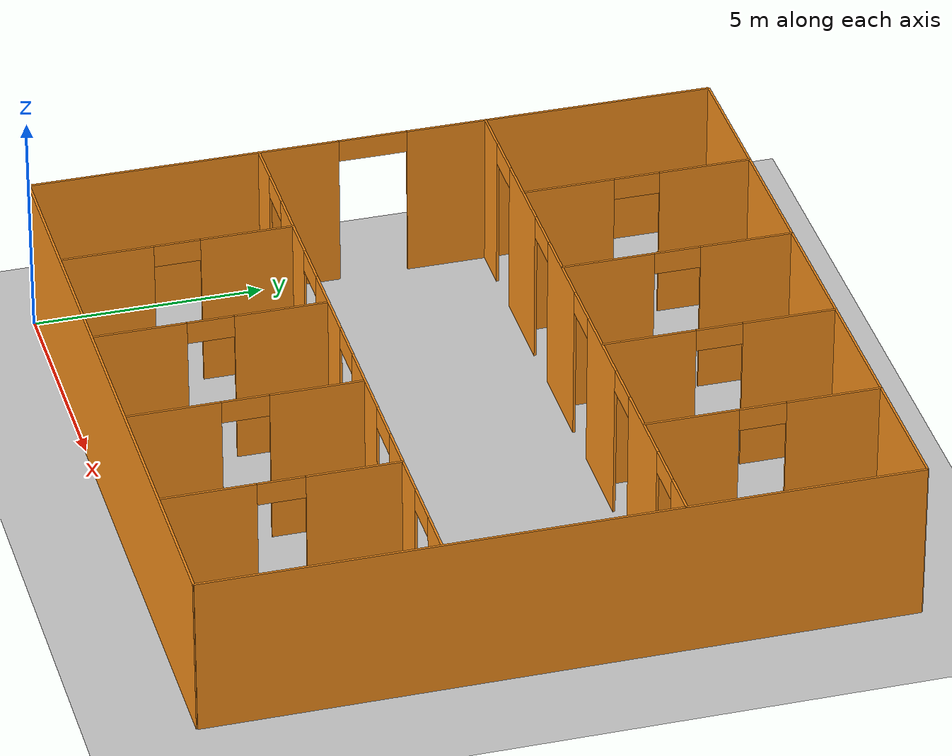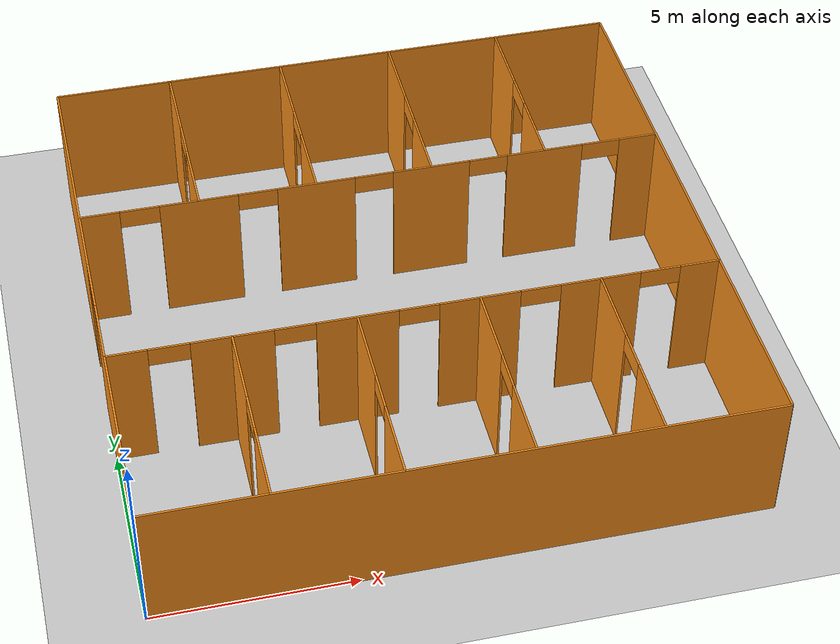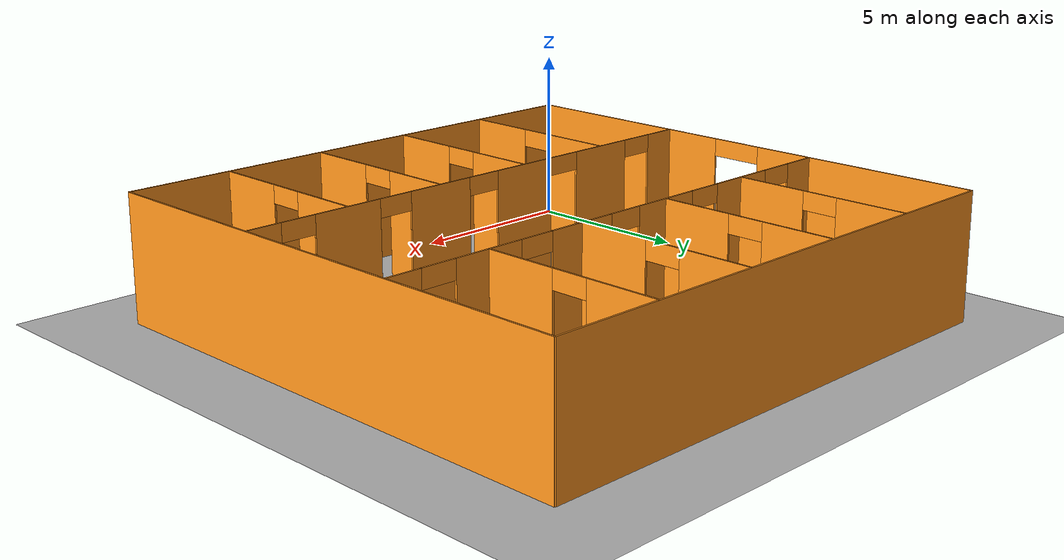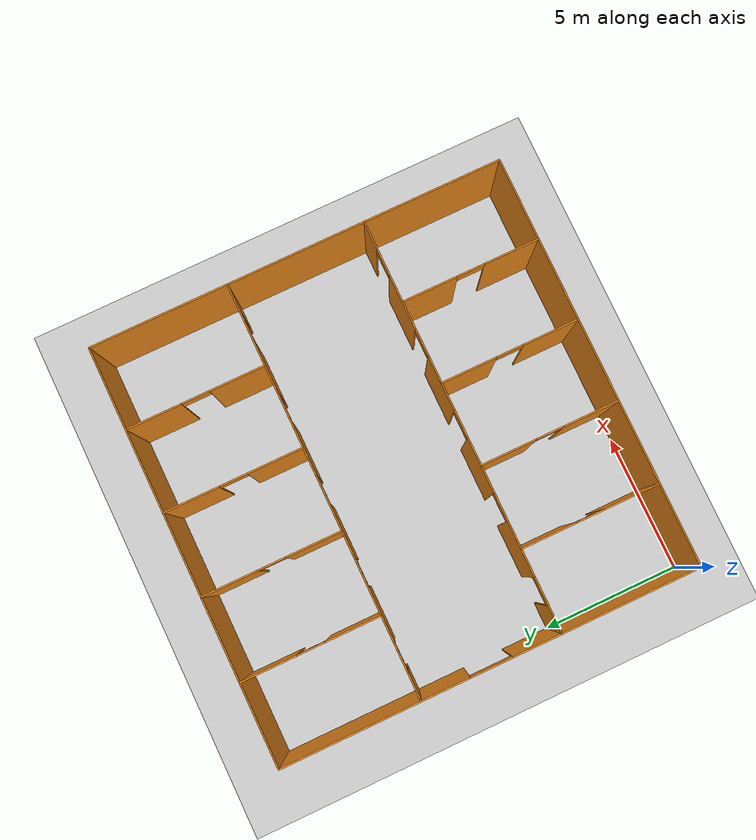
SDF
<sdf version="1.6">
 <world name="default">
  <model name="box_52">
   <pose>12.0 2.5 3.25 0 0 1.5707963267948966</pose>
   <link name="link">
    <inertial>
     <mass>1</mass>
     <inertia><ixx>0</ixx><ixy>0</ixy><ixz>0</ixz><iyy>0</iyy><iyz>0</iyz><izz>0</izz></inertia>
    </inertial>
    <collision name="collision"><geometry><box><size>1.0 0.05 0.5</size></box></geometry></collision>
    <visual name="visual">
     <geometry><box><size>1.0 0.05 0.5</size></box></geometry>
     <material>
      <script><name>Gazebo/Orange</name><uri>file://media/materials/scripts/gazebo.material</uri></script>
     </material>
    </visual>
   </link>
   <static>1</static>
  </model>
  <model name="box_51">
   <pose>9.0 2.5 3.25 0 0 1.5707963267948966</pose>
   <link name="link">
    <inertial>
     <mass>1</mass>
     <inertia><ixx>0</ixx><ixy>0</ixy><ixz>0</ixz><iyy>0</iyy><iyz>0</iyz><izz>0</izz></inertia>
    </inertial>
    <collision name="collision"><geometry><box><size>1.0 0.05 0.5</size></box></geometry></collision>
    <visual name="visual">
     <geometry><box><size>1.0 0.05 0.5</size></box></geometry>
     <material>
      <script><name>Gazebo/Orange</name><uri>file://media/materials/scripts/gazebo.material</uri></script>
     </material>
    </visual>
   </link>
   <static>1</static>
  </model>
  <model name="box_50">
   <pose>6.0 2.5 3.25 0 0 1.5707963267948966</pose>
   <link name="link">
    <inertial>
     <mass>1</mass>
     <inertia><ixx>0</ixx><ixy>0</ixy><ixz>0</ixz><iyy>0</iyy><iyz>0</iyz><izz>0</izz></inertia>
    </inertial>
    <collision name="collision"><geometry><box><size>1.0 0.05 0.5</size></box></geometry></collision>
    <visual name="visual">
     <geometry><box><size>1.0 0.05 0.5</size></box></geometry>
     <material>
      <script><name>Gazebo/Orange</name><uri>file://media/materials/scripts/gazebo.material</uri></script>
     </material>
    </visual>
   </link>
   <static>1</static>
  </model>
  <model name="box_49">
   <pose>3.0 2.5 3.25 0 0 1.5707963267948966</pose>
   <link name="link">
    <inertial>
     <mass>1</mass>
     <inertia><ixx>0</ixx><ixy>0</ixy><ixz>0</ixz><iyy>0</iyy><iyz>0</iyz><izz>0</izz></inertia>
    </inertial>
    <collision name="collision"><geometry><box><size>1.0 0.05 0.5</size></box></geometry></collision>
    <visual name="visual">
     <geometry><box><size>1.0 0.05 0.5</size></box></geometry>
     <material>
      <script><name>Gazebo/Orange</name><uri>file://media/materials/scripts/gazebo.material</uri></script>
     </material>
    </visual>
   </link>
   <static>1</static>
  </model>
  <model name="box_48">
   <pose>3.0 12.5 3.25 0 0 1.5707963267948966</pose>
   <link name="link">
    <inertial>
     <mass>1</mass>
     <inertia><ixx>0</ixx><ixy>0</ixy><ixz>0</ixz><iyy>0</iyy><iyz>0</iyz><izz>0</izz></inertia>
    </inertial>
    <collision name="collision"><geometry><box><size>1.0 0.05 0.5</size></box></geometry></collision>
    <visual name="visual">
     <geometry><box><size>1.0 0.05 0.5</size></box></geometry>
     <material>
      <script><name>Gazebo/Orange</name><uri>file://media/materials/scripts/gazebo.material</uri></script>
     </material>
    </visual>
   </link>
   <static>1</static>
  </model>
  <model name="box_47">
   <pose>6.0 12.5 3.25 0 0 1.5707963267948966</pose>
   <link name="link">
    <inertial>
     <mass>1</mass>
     <inertia><ixx>0</ixx><ixy>0</ixy><ixz>0</ixz><iyy>0</iyy><iyz>0</iyz><izz>0</izz></inertia>
    </inertial>
    <collision name="collision"><geometry><box><size>1.0 0.05 0.5</size></box></geometry></collision>
    <visual name="visual">
     <geometry><box><size>1.0 0.05 0.5</size></box></geometry>
     <material>
      <script><name>Gazebo/Orange</name><uri>file://media/materials/scripts/gazebo.material</uri></script>
     </material>
    </visual>
   </link>
   <static>1</static>
  </model>
  <model name="box_46">
   <pose>12.0 12.5 3.25 0 0 1.5707963267948966</pose>
   <link name="link">
    <inertial>
     <mass>1</mass>
     <inertia><ixx>0</ixx><ixy>0</ixy><ixz>0</ixz><iyy>0</iyy><iyz>0</iyz><izz>0</izz></inertia>
    </inertial>
    <collision name="collision"><geometry><box><size>1.0 0.05 0.5</size></box></geometry></collision>
    <visual name="visual">
     <geometry><box><size>1.0 0.05 0.5</size></box></geometry>
     <material>
      <script><name>Gazebo/Orange</name><uri>file://media/materials/scripts/gazebo.material</uri></script>
     </material>
    </visual>
   </link>
   <static>1</static>
  </model>
  <model name="box_45">
   <pose>9.0 12.5 3.25 0 0 1.5707963267948966</pose>
   <link name="link">
    <inertial>
     <mass>1</mass>
     <inertia><ixx>0</ixx><ixy>0</ixy><ixz>0</ixz><iyy>0</iyy><iyz>0</iyz><izz>0</izz></inertia>
    </inertial>
    <collision name="collision"><geometry><box><size>1.0 0.05 0.5</size></box></geometry></collision>
    <visual name="visual">
     <geometry><box><size>1.0 0.05 0.5</size></box></geometry>
     <material>
      <script><name>Gazebo/Orange</name><uri>file://media/materials/scripts/gazebo.material</uri></script>
     </material>
    </visual>
   </link>
   <static>1</static>
  </model>
  <model name="box_44">
   <pose>1.5 5.0 3.25 0 0 -3.141592653589793</pose>
   <link name="link">
    <inertial>
     <mass>1</mass>
     <inertia><ixx>0</ixx><ixy>0</ixy><ixz>0</ixz><iyy>0</iyy><iyz>0</iyz><izz>0</izz></inertia>
    </inertial>
    <collision name="collision"><geometry><box><size>1.0 0.05 0.5</size></box></geometry></collision>
    <visual name="visual">
     <geometry><box><size>1.0 0.05 0.5</size></box></geometry>
     <material>
      <script><name>Gazebo/Orange</name><uri>file://media/materials/scripts/gazebo.material</uri></script>
     </material>
    </visual>
   </link>
   <static>1</static>
  </model>
  <model name="box_43">
   <pose>4.5 5.0 3.25 0 0 -3.141592653589793</pose>
   <link name="link">
    <inertial>
     <mass>1</mass>
     <inertia><ixx>0</ixx><ixy>0</ixy><ixz>0</ixz><iyy>0</iyy><iyz>0</iyz><izz>0</izz></inertia>
    </inertial>
    <collision name="collision"><geometry><box><size>1.0 0.05 0.5</size></box></geometry></collision>
    <visual name="visual">
     <geometry><box><size>1.0 0.05 0.5</size></box></geometry>
     <material>
      <script><name>Gazebo/Orange</name><uri>file://media/materials/scripts/gazebo.material</uri></script>
     </material>
    </visual>
   </link>
   <static>1</static>
  </model>
  <model name="box_42">
   <pose>7.5 5.0 3.25 0 0 -3.141592653589793</pose>
   <link name="link">
    <inertial>
     <mass>1</mass>
     <inertia><ixx>0</ixx><ixy>0</ixy><ixz>0</ixz><iyy>0</iyy><iyz>0</iyz><izz>0</izz></inertia>
    </inertial>
    <collision name="collision"><geometry><box><size>1.0 0.05 0.5</size></box></geometry></collision>
    <visual name="visual">
     <geometry><box><size>1.0 0.05 0.5</size></box></geometry>
     <material>
      <script><name>Gazebo/Orange</name><uri>file://media/materials/scripts/gazebo.material</uri></script>
     </material>
    </visual>
   </link>
   <static>1</static>
  </model>
  <model name="box_41">
   <pose>10.5 5.0 3.25 0 0 -3.141592653589793</pose>
   <link name="link">
    <inertial>
     <mass>1</mass>
     <inertia><ixx>0</ixx><ixy>0</ixy><ixz>0</ixz><iyy>0</iyy><iyz>0</iyz><izz>0</izz></inertia>
    </inertial>
    <collision name="collision"><geometry><box><size>1.0 0.05 0.5</size></box></geometry></collision>
    <visual name="visual">
     <geometry><box><size>1.0 0.05 0.5</size></box></geometry>
     <material>
      <script><name>Gazebo/Orange</name><uri>file://media/materials/scripts/gazebo.material</uri></script>
     </material>
    </visual>
   </link>
   <static>1</static>
  </model>
  <model name="box_40">
   <pose>13.5 5.0 3.25 0 0 -3.141592653589793</pose>
   <link name="link">
    <inertial>
     <mass>1</mass>
     <inertia><ixx>0</ixx><ixy>0</ixy><ixz>0</ixz><iyy>0</iyy><iyz>0</iyz><izz>0</izz></inertia>
    </inertial>
    <collision name="collision"><geometry><box><size>1.0 0.05 0.5</size></box></geometry></collision>
    <visual name="visual">
     <geometry><box><size>1.0 0.05 0.5</size></box></geometry>
     <material>
      <script><name>Gazebo/Orange</name><uri>file://media/materials/scripts/gazebo.material</uri></script>
     </material>
    </visual>
   </link>
   <static>1</static>
  </model>
  <model name="box_39">
   <pose>13.5 10.0 3.25 0 0 -3.141592653589793</pose>
   <link name="link">
    <inertial>
     <mass>1</mass>
     <inertia><ixx>0</ixx><ixy>0</ixy><ixz>0</ixz><iyy>0</iyy><iyz>0</iyz><izz>0</izz></inertia>
    </inertial>
    <collision name="collision"><geometry><box><size>1.0 0.05 0.5</size></box></geometry></collision>
    <visual name="visual">
     <geometry><box><size>1.0 0.05 0.5</size></box></geometry>
     <material>
      <script><name>Gazebo/Orange</name><uri>file://media/materials/scripts/gazebo.material</uri></script>
     </material>
    </visual>
   </link>
   <static>1</static>
  </model>
  <model name="box_38">
   <pose>10.5 10.0 3.25 0 0 -3.141592653589793</pose>
   <link name="link">
    <inertial>
     <mass>1</mass>
     <inertia><ixx>0</ixx><ixy>0</ixy><ixz>0</ixz><iyy>0</iyy><iyz>0</iyz><izz>0</izz></inertia>
    </inertial>
    <collision name="collision"><geometry><box><size>1.0 0.05 0.5</size></box></geometry></collision>
    <visual name="visual">
     <geometry><box><size>1.0 0.05 0.5</size></box></geometry>
     <material>
      <script><name>Gazebo/Orange</name><uri>file://media/materials/scripts/gazebo.material</uri></script>
     </material>
    </visual>
   </link>
   <static>1</static>
  </model>
  <model name="box_37">
   <pose>7.5 10.0 3.25 0 0 -3.141592653589793</pose>
   <link name="link">
    <inertial>
     <mass>1</mass>
     <inertia><ixx>0</ixx><ixy>0</ixy><ixz>0</ixz><iyy>0</iyy><iyz>0</iyz><izz>0</izz></inertia>
    </inertial>
    <collision name="collision"><geometry><box><size>1.0 0.05 0.5</size></box></geometry></collision>
    <visual name="visual">
     <geometry><box><size>1.0 0.05 0.5</size></box></geometry>
     <material>
      <script><name>Gazebo/Orange</name><uri>file://media/materials/scripts/gazebo.material</uri></script>
     </material>
    </visual>
   </link>
   <static>1</static>
  </model>
  <model name="box_36">
   <pose>4.5 10.0 3.25 0 0 -3.141592653589793</pose>
   <link name="link">
    <inertial>
     <mass>1</mass>
     <inertia><ixx>0</ixx><ixy>0</ixy><ixz>0</ixz><iyy>0</iyy><iyz>0</iyz><izz>0</izz></inertia>
    </inertial>
    <collision name="collision"><geometry><box><size>1.0 0.05 0.5</size></box></geometry></collision>
    <visual name="visual">
     <geometry><box><size>1.0 0.05 0.5</size></box></geometry>
     <material>
      <script><name>Gazebo/Orange</name><uri>file://media/materials/scripts/gazebo.material</uri></script>
     </material>
    </visual>
   </link>
   <static>1</static>
  </model>
  <model name="box_35">
   <pose>1.5 10.0 3.25 0 0 -3.141592653589793</pose>
   <link name="link">
    <inertial>
     <mass>1</mass>
     <inertia><ixx>0</ixx><ixy>0</ixy><ixz>0</ixz><iyy>0</iyy><iyz>0</iyz><izz>0</izz></inertia>
    </inertial>
    <collision name="collision"><geometry><box><size>1.0 0.05 0.5</size></box></geometry></collision>
    <visual name="visual">
     <geometry><box><size>1.0 0.05 0.5</size></box></geometry>
     <material>
      <script><name>Gazebo/Orange</name><uri>file://media/materials/scripts/gazebo.material</uri></script>
     </material>
    </visual>
   </link>
   <static>1</static>
  </model>
  <model name="box_34">
   <pose>0.0 7.5 3.25 0 0 1.5707963267948966</pose>
   <link name="link">
    <inertial>
     <mass>1</mass>
     <inertia><ixx>0</ixx><ixy>0</ixy><ixz>0</ixz><iyy>0</iyy><iyz>0</iyz><izz>0</izz></inertia>
    </inertial>
    <collision name="collision"><geometry><box><size>1.5 0.05 0.5</size></box></geometry></collision>
    <visual name="visual">
     <geometry><box><size>1.5 0.05 0.5</size></box></geometry>
     <material>
      <script><name>Gazebo/Orange</name><uri>file://media/materials/scripts/gazebo.material</uri></script>
     </material>
    </visual>
   </link>
   <static>1</static>
  </model>
  <model name="box_33">
   <pose>3.0 1.0 1.75 0 0 1.5707963267948966</pose>
   <link name="link">
    <inertial>
     <mass>1</mass>
     <inertia><ixx>0</ixx><ixy>0</ixy><ixz>0</ixz><iyy>0</iyy><iyz>0</iyz><izz>0</izz></inertia>
    </inertial>
    <collision name="collision"><geometry><box><size>2.0 0.05 3.5</size></box></geometry></collision>
    <visual name="visual">
     <geometry><box><size>2.0 0.05 3.5</size></box></geometry>
     <material>
      <script><name>Gazebo/Orange</name><uri>file://media/materials/scripts/gazebo.material</uri></script>
     </material>
    </visual>
   </link>
   <static>1</static>
  </model>
  <model name="box_32">
   <pose>3.0 4.0 1.75 0 0 -1.5707963267948966</pose>
   <link name="link">
    <inertial>
     <mass>1</mass>
     <inertia><ixx>0</ixx><ixy>0</ixy><ixz>0</ixz><iyy>0</iyy><iyz>0</iyz><izz>0</izz></inertia>
    </inertial>
    <collision name="collision"><geometry><box><size>2.0 0.05 3.5</size></box></geometry></collision>
    <visual name="visual">
     <geometry><box><size>2.0 0.05 3.5</size></box></geometry>
     <material>
      <script><name>Gazebo/Orange</name><uri>file://media/materials/scripts/gazebo.material</uri></script>
     </material>
    </visual>
   </link>
   <static>1</static>
  </model>
  <model name="box_31">
   <pose>6.0 4.0 1.75 0 0 -1.5707963267948966</pose>
   <link name="link">
    <inertial>
     <mass>1</mass>
     <inertia><ixx>0</ixx><ixy>0</ixy><ixz>0</ixz><iyy>0</iyy><iyz>0</iyz><izz>0</izz></inertia>
    </inertial>
    <collision name="collision"><geometry><box><size>2.0 0.05 3.5</size></box></geometry></collision>
    <visual name="visual">
     <geometry><box><size>2.0 0.05 3.5</size></box></geometry>
     <material>
      <script><name>Gazebo/Orange</name><uri>file://media/materials/scripts/gazebo.material</uri></script>
     </material>
    </visual>
   </link>
   <static>1</static>
  </model>
  <model name="box_30">
   <pose>6.0 1.0 1.75 0 0 1.5707963267948966</pose>
   <link name="link">
    <inertial>
     <mass>1</mass>
     <inertia><ixx>0</ixx><ixy>0</ixy><ixz>0</ixz><iyy>0</iyy><iyz>0</iyz><izz>0</izz></inertia>
    </inertial>
    <collision name="collision"><geometry><box><size>2.0 0.05 3.5</size></box></geometry></collision>
    <visual name="visual">
     <geometry><box><size>2.0 0.05 3.5</size></box></geometry>
     <material>
      <script><name>Gazebo/Orange</name><uri>file://media/materials/scripts/gazebo.material</uri></script>
     </material>
    </visual>
   </link>
   <static>1</static>
  </model>
  <model name="box_29">
   <pose>9.0 1.0 1.75 0 0 1.5707963267948966</pose>
   <link name="link">
    <inertial>
     <mass>1</mass>
     <inertia><ixx>0</ixx><ixy>0</ixy><ixz>0</ixz><iyy>0</iyy><iyz>0</iyz><izz>0</izz></inertia>
    </inertial>
    <collision name="collision"><geometry><box><size>2.0 0.05 3.5</size></box></geometry></collision>
    <visual name="visual">
     <geometry><box><size>2.0 0.05 3.5</size></box></geometry>
     <material>
      <script><name>Gazebo/Orange</name><uri>file://media/materials/scripts/gazebo.material</uri></script>
     </material>
    </visual>
   </link>
   <static>1</static>
  </model>
  <model name="box_28">
   <pose>9.0 4.0 1.75 0 0 -1.5707963267948966</pose>
   <link name="link">
    <inertial>
     <mass>1</mass>
     <inertia><ixx>0</ixx><ixy>0</ixy><ixz>0</ixz><iyy>0</iyy><iyz>0</iyz><izz>0</izz></inertia>
    </inertial>
    <collision name="collision"><geometry><box><size>2.0 0.05 3.5</size></box></geometry></collision>
    <visual name="visual">
     <geometry><box><size>2.0 0.05 3.5</size></box></geometry>
     <material>
      <script><name>Gazebo/Orange</name><uri>file://media/materials/scripts/gazebo.material</uri></script>
     </material>
    </visual>
   </link>
   <static>1</static>
  </model>
  <model name="box_27">
   <pose>12.0 1.0 1.75 0 0 1.5707963267948966</pose>
   <link name="link">
    <inertial>
     <mass>1</mass>
     <inertia><ixx>0</ixx><ixy>0</ixy><ixz>0</ixz><iyy>0</iyy><iyz>0</iyz><izz>0</izz></inertia>
    </inertial>
    <collision name="collision"><geometry><box><size>2.0 0.05 3.5</size></box></geometry></collision>
    <visual name="visual">
     <geometry><box><size>2.0 0.05 3.5</size></box></geometry>
     <material>
      <script><name>Gazebo/Orange</name><uri>file://media/materials/scripts/gazebo.material</uri></script>
     </material>
    </visual>
   </link>
   <static>1</static>
  </model>
  <model name="box_26">
   <pose>12.0 4.0 1.75 0 0 -1.5707963267948966</pose>
   <link name="link">
    <inertial>
     <mass>1</mass>
     <inertia><ixx>0</ixx><ixy>0</ixy><ixz>0</ixz><iyy>0</iyy><iyz>0</iyz><izz>0</izz></inertia>
    </inertial>
    <collision name="collision"><geometry><box><size>2.0 0.05 3.5</size></box></geometry></collision>
    <visual name="visual">
     <geometry><box><size>2.0 0.05 3.5</size></box></geometry>
     <material>
      <script><name>Gazebo/Orange</name><uri>file://media/materials/scripts/gazebo.material</uri></script>
     </material>
    </visual>
   </link>
   <static>1</static>
  </model>
  <model name="box_25">
   <pose>12.0 14.0 1.75 0 0 -1.5707963267948966</pose>
   <link name="link">
    <inertial>
     <mass>1</mass>
     <inertia><ixx>0</ixx><ixy>0</ixy><ixz>0</ixz><iyy>0</iyy><iyz>0</iyz><izz>0</izz></inertia>
    </inertial>
    <collision name="collision"><geometry><box><size>2.0 0.05 3.5</size></box></geometry></collision>
    <visual name="visual">
     <geometry><box><size>2.0 0.05 3.5</size></box></geometry>
     <material>
      <script><name>Gazebo/Orange</name><uri>file://media/materials/scripts/gazebo.material</uri></script>
     </material>
    </visual>
   </link>
   <static>1</static>
  </model>
  <model name="box_24">
   <pose>12.0 11.0 1.75 0 0 1.5707963267948966</pose>
   <link name="link">
    <inertial>
     <mass>1</mass>
     <inertia><ixx>0</ixx><ixy>0</ixy><ixz>0</ixz><iyy>0</iyy><iyz>0</iyz><izz>0</izz></inertia>
    </inertial>
    <collision name="collision"><geometry><box><size>2.0 0.05 3.5</size></box></geometry></collision>
    <visual name="visual">
     <geometry><box><size>2.0 0.05 3.5</size></box></geometry>
     <material>
      <script><name>Gazebo/Orange</name><uri>file://media/materials/scripts/gazebo.material</uri></script>
     </material>
    </visual>
   </link>
   <static>1</static>
  </model>
  <model name="box_23">
   <pose>9.0 11.0 1.75 0 0 1.5707963267948966</pose>
   <link name="link">
    <inertial>
     <mass>1</mass>
     <inertia><ixx>0</ixx><ixy>0</ixy><ixz>0</ixz><iyy>0</iyy><iyz>0</iyz><izz>0</izz></inertia>
    </inertial>
    <collision name="collision"><geometry><box><size>2.0 0.05 3.5</size></box></geometry></collision>
    <visual name="visual">
     <geometry><box><size>2.0 0.05 3.5</size></box></geometry>
     <material>
      <script><name>Gazebo/Orange</name><uri>file://media/materials/scripts/gazebo.material</uri></script>
     </material>
    </visual>
   </link>
   <static>1</static>
  </model>
  <model name="box_22">
   <pose>9.0 14.0 1.75 0 0 1.5707963267948966</pose>
   <link name="link">
    <inertial>
     <mass>1</mass>
     <inertia><ixx>0</ixx><ixy>0</ixy><ixz>0</ixz><iyy>0</iyy><iyz>0</iyz><izz>0</izz></inertia>
    </inertial>
    <collision name="collision"><geometry><box><size>2.0 0.05 3.5</size></box></geometry></collision>
    <visual name="visual">
     <geometry><box><size>2.0 0.05 3.5</size></box></geometry>
     <material>
      <script><name>Gazebo/Orange</name><uri>file://media/materials/scripts/gazebo.material</uri></script>
     </material>
    </visual>
   </link>
   <static>1</static>
  </model>
  <model name="box_21">
   <pose>6.0 14.0 1.75 0 0 -1.5707963267948966</pose>
   <link name="link">
    <inertial>
     <mass>1</mass>
     <inertia><ixx>0</ixx><ixy>0</ixy><ixz>0</ixz><iyy>0</iyy><iyz>0</iyz><izz>0</izz></inertia>
    </inertial>
    <collision name="collision"><geometry><box><size>2.0 0.05 3.5</size></box></geometry></collision>
    <visual name="visual">
     <geometry><box><size>2.0 0.05 3.5</size></box></geometry>
     <material>
      <script><name>Gazebo/Orange</name><uri>file://media/materials/scripts/gazebo.material</uri></script>
     </material>
    </visual>
   </link>
   <static>1</static>
  </model>
  <model name="box_20">
   <pose>6.0 11.0 1.75 0 0 1.5707963267948966</pose>
   <link name="link">
    <inertial>
     <mass>1</mass>
     <inertia><ixx>0</ixx><ixy>0</ixy><ixz>0</ixz><iyy>0</iyy><iyz>0</iyz><izz>0</izz></inertia>
    </inertial>
    <collision name="collision"><geometry><box><size>2.0 0.05 3.5</size></box></geometry></collision>
    <visual name="visual">
     <geometry><box><size>2.0 0.05 3.5</size></box></geometry>
     <material>
      <script><name>Gazebo/Orange</name><uri>file://media/materials/scripts/gazebo.material</uri></script>
     </material>
    </visual>
   </link>
   <static>1</static>
  </model>
  <model name="box_19">
   <pose>3.0 14.0 1.75 0 0 -1.5707963267948966</pose>
   <link name="link">
    <inertial>
     <mass>1</mass>
     <inertia><ixx>0</ixx><ixy>0</ixy><ixz>0</ixz><iyy>0</iyy><iyz>0</iyz><izz>0</izz></inertia>
    </inertial>
    <collision name="collision"><geometry><box><size>2.0 0.05 3.5</size></box></geometry></collision>
    <visual name="visual">
     <geometry><box><size>2.0 0.05 3.5</size></box></geometry>
     <material>
      <script><name>Gazebo/Orange</name><uri>file://media/materials/scripts/gazebo.material</uri></script>
     </material>
    </visual>
   </link>
   <static>1</static>
  </model>
  <model name="box_18">
   <pose>3.0 11.0 1.75 0 0 1.5707963267948966</pose>
   <link name="link">
    <inertial>
     <mass>1</mass>
     <inertia><ixx>0</ixx><ixy>0</ixy><ixz>0</ixz><iyy>0</iyy><iyz>0</iyz><izz>0</izz></inertia>
    </inertial>
    <collision name="collision"><geometry><box><size>2.0 0.05 3.5</size></box></geometry></collision>
    <visual name="visual">
     <geometry><box><size>2.0 0.05 3.5</size></box></geometry>
     <material>
      <script><name>Gazebo/Orange</name><uri>file://media/materials/scripts/gazebo.material</uri></script>
     </material>
    </visual>
   </link>
   <static>1</static>
  </model>
  <model name="box_17">
   <pose>0.5 5.0 1.75 0 0 -0.0</pose>
   <link name="link">
    <inertial>
     <mass>1</mass>
     <inertia><ixx>0</ixx><ixy>0</ixy><ixz>0</ixz><iyy>0</iyy><iyz>0</iyz><izz>0</izz></inertia>
    </inertial>
    <collision name="collision"><geometry><box><size>1.0 0.05 3.5</size></box></geometry></collision>
    <visual name="visual">
     <geometry><box><size>1.0 0.05 3.5</size></box></geometry>
     <material>
      <script><name>Gazebo/Orange</name><uri>file://media/materials/scripts/gazebo.material</uri></script>
     </material>
    </visual>
   </link>
   <static>1</static>
  </model>
  <model name="box_16">
   <pose>3.0 5.0 1.75 0 0 -0.0</pose>
   <link name="link">
    <inertial>
     <mass>1</mass>
     <inertia><ixx>0</ixx><ixy>0</ixy><ixz>0</ixz><iyy>0</iyy><iyz>0</iyz><izz>0</izz></inertia>
    </inertial>
    <collision name="collision"><geometry><box><size>2.0 0.05 3.5</size></box></geometry></collision>
    <visual name="visual">
     <geometry><box><size>2.0 0.05 3.5</size></box></geometry>
     <material>
      <script><name>Gazebo/Orange</name><uri>file://media/materials/scripts/gazebo.material</uri></script>
     </material>
    </visual>
   </link>
   <static>1</static>
  </model>
  <model name="box_15">
   <pose>6.0 5.0 1.75 0 0 -0.0</pose>
   <link name="link">
    <inertial>
     <mass>1</mass>
     <inertia><ixx>0</ixx><ixy>0</ixy><ixz>0</ixz><iyy>0</iyy><iyz>0</iyz><izz>0</izz></inertia>
    </inertial>
    <collision name="collision"><geometry><box><size>2.0 0.05 3.5</size></box></geometry></collision>
    <visual name="visual">
     <geometry><box><size>2.0 0.05 3.5</size></box></geometry>
     <material>
      <script><name>Gazebo/Orange</name><uri>file://media/materials/scripts/gazebo.material</uri></script>
     </material>
    </visual>
   </link>
   <static>1</static>
  </model>
  <model name="box_14">
   <pose>9.0 5.0 1.75 0 0 -0.0</pose>
   <link name="link">
    <inertial>
     <mass>1</mass>
     <inertia><ixx>0</ixx><ixy>0</ixy><ixz>0</ixz><iyy>0</iyy><iyz>0</iyz><izz>0</izz></inertia>
    </inertial>
    <collision name="collision"><geometry><box><size>2.0 0.05 3.5</size></box></geometry></collision>
    <visual name="visual">
     <geometry><box><size>2.0 0.05 3.5</size></box></geometry>
     <material>
      <script><name>Gazebo/Orange</name><uri>file://media/materials/scripts/gazebo.material</uri></script>
     </material>
    </visual>
   </link>
   <static>1</static>
  </model>
  <model name="box_13">
   <pose>12.0 5.0 1.75 0 0 -0.0</pose>
   <link name="link">
    <inertial>
     <mass>1</mass>
     <inertia><ixx>0</ixx><ixy>0</ixy><ixz>0</ixz><iyy>0</iyy><iyz>0</iyz><izz>0</izz></inertia>
    </inertial>
    <collision name="collision"><geometry><box><size>2.0 0.05 3.5</size></box></geometry></collision>
    <visual name="visual">
     <geometry><box><size>2.0 0.05 3.5</size></box></geometry>
     <material>
      <script><name>Gazebo/Orange</name><uri>file://media/materials/scripts/gazebo.material</uri></script>
     </material>
    </visual>
   </link>
   <static>1</static>
  </model>
  <model name="box_12">
   <pose>14.5 5.0 1.75 0 0 -3.141592653589793</pose>
   <link name="link">
    <inertial>
     <mass>1</mass>
     <inertia><ixx>0</ixx><ixy>0</ixy><ixz>0</ixz><iyy>0</iyy><iyz>0</iyz><izz>0</izz></inertia>
    </inertial>
    <collision name="collision"><geometry><box><size>1.0 0.05 3.5</size></box></geometry></collision>
    <visual name="visual">
     <geometry><box><size>1.0 0.05 3.5</size></box></geometry>
     <material>
      <script><name>Gazebo/Orange</name><uri>file://media/materials/scripts/gazebo.material</uri></script>
     </material>
    </visual>
   </link>
   <static>1</static>
  </model>
  <model name="box_11">
   <pose>14.5 10.0 1.75 0 0 -3.141592653589793</pose>
   <link name="link">
    <inertial>
     <mass>1</mass>
     <inertia><ixx>0</ixx><ixy>0</ixy><ixz>0</ixz><iyy>0</iyy><iyz>0</iyz><izz>0</izz></inertia>
    </inertial>
    <collision name="collision"><geometry><box><size>1.0 0.05 3.5</size></box></geometry></collision>
    <visual name="visual">
     <geometry><box><size>1.0 0.05 3.5</size></box></geometry>
     <material>
      <script><name>Gazebo/Orange</name><uri>file://media/materials/scripts/gazebo.material</uri></script>
     </material>
    </visual>
   </link>
   <static>1</static>
  </model>
  <model name="box_10">
   <pose>12.0 10.0 1.75 0 0 -3.141592653589793</pose>
   <link name="link">
    <inertial>
     <mass>1</mass>
     <inertia><ixx>0</ixx><ixy>0</ixy><ixz>0</ixz><iyy>0</iyy><iyz>0</iyz><izz>0</izz></inertia>
    </inertial>
    <collision name="collision"><geometry><box><size>2.0 0.05 3.5</size></box></geometry></collision>
    <visual name="visual">
     <geometry><box><size>2.0 0.05 3.5</size></box></geometry>
     <material>
      <script><name>Gazebo/Orange</name><uri>file://media/materials/scripts/gazebo.material</uri></script>
     </material>
    </visual>
   </link>
   <static>1</static>
  </model>
  <model name="box_9">
   <pose>9.0 10.0 1.75 0 0 -3.141592653589793</pose>
   <link name="link">
    <inertial>
     <mass>1</mass>
     <inertia><ixx>0</ixx><ixy>0</ixy><ixz>0</ixz><iyy>0</iyy><iyz>0</iyz><izz>0</izz></inertia>
    </inertial>
    <collision name="collision"><geometry><box><size>2.0 0.05 3.5</size></box></geometry></collision>
    <visual name="visual">
     <geometry><box><size>2.0 0.05 3.5</size></box></geometry>
     <material>
      <script><name>Gazebo/Orange</name><uri>file://media/materials/scripts/gazebo.material</uri></script>
     </material>
    </visual>
   </link>
   <static>1</static>
  </model>
  <model name="box_8">
   <pose>6.0 10.0 1.75 0 0 -3.141592653589793</pose>
   <link name="link">
    <inertial>
     <mass>1</mass>
     <inertia><ixx>0</ixx><ixy>0</ixy><ixz>0</ixz><iyy>0</iyy><iyz>0</iyz><izz>0</izz></inertia>
    </inertial>
    <collision name="collision"><geometry><box><size>2.0 0.05 3.5</size></box></geometry></collision>
    <visual name="visual">
     <geometry><box><size>2.0 0.05 3.5</size></box></geometry>
     <material>
      <script><name>Gazebo/Orange</name><uri>file://media/materials/scripts/gazebo.material</uri></script>
     </material>
    </visual>
   </link>
   <static>1</static>
  </model>
  <model name="box_7">
   <pose>3.0 10.0 1.75 0 0 -3.141592653589793</pose>
   <link name="link">
    <inertial>
     <mass>1</mass>
     <inertia><ixx>0</ixx><ixy>0</ixy><ixz>0</ixz><iyy>0</iyy><iyz>0</iyz><izz>0</izz></inertia>
    </inertial>
    <collision name="collision"><geometry><box><size>2.0 0.05 3.5</size></box></geometry></collision>
    <visual name="visual">
     <geometry><box><size>2.0 0.05 3.5</size></box></geometry>
     <material>
      <script><name>Gazebo/Orange</name><uri>file://media/materials/scripts/gazebo.material</uri></script>
     </material>
    </visual>
   </link>
   <static>1</static>
  </model>
  <model name="box_6">
   <pose>0.5 10.0 1.75 0 0 -0.0</pose>
   <link name="link">
    <inertial>
     <mass>1</mass>
     <inertia><ixx>0</ixx><ixy>0</ixy><ixz>0</ixz><iyy>0</iyy><iyz>0</iyz><izz>0</izz></inertia>
    </inertial>
    <collision name="collision"><geometry><box><size>1.0 0.05 3.5</size></box></geometry></collision>
    <visual name="visual">
     <geometry><box><size>1.0 0.05 3.5</size></box></geometry>
     <material>
      <script><name>Gazebo/Orange</name><uri>file://media/materials/scripts/gazebo.material</uri></script>
     </material>
    </visual>
   </link>
   <static>1</static>
  </model>
  <model name="box_5">
   <pose>0.0 11.625 1.75 0 0 1.5707963267948966</pose>
   <link name="link">
    <inertial>
     <mass>1</mass>
     <inertia><ixx>0</ixx><ixy>0</ixy><ixz>0</ixz><iyy>0</iyy><iyz>0</iyz><izz>0</izz></inertia>
    </inertial>
    <collision name="collision"><geometry><box><size>6.75 0.05 3.5</size></box></geometry></collision>
    <visual name="visual">
     <geometry><box><size>6.75 0.05 3.5</size></box></geometry>
     <material>
      <script><name>Gazebo/Orange</name><uri>file://media/materials/scripts/gazebo.material</uri></script>
     </material>
    </visual>
   </link>
   <static>1</static>
  </model>
  <model name="box_4">
   <pose>7.5 15.0 1.75 0 0 -0.0</pose>
   <link name="link">
    <inertial>
     <mass>1</mass>
     <inertia><ixx>0</ixx><ixy>0</ixy><ixz>0</ixz><iyy>0</iyy><iyz>0</iyz><izz>0</izz></inertia>
    </inertial>
    <collision name="collision"><geometry><box><size>15.0 0.05 3.5</size></box></geometry></collision>
    <visual name="visual">
     <geometry><box><size>15.0 0.05 3.5</size></box></geometry>
     <material>
      <script><name>Gazebo/Orange</name><uri>file://media/materials/scripts/gazebo.material</uri></script>
     </material>
    </visual>
   </link>
   <static>1</static>
  </model>
  <model name="box_3">
   <pose>15.0 7.5 1.75 0 0 -1.5707963267948966</pose>
   <link name="link">
    <inertial>
     <mass>1</mass>
     <inertia><ixx>0</ixx><ixy>0</ixy><ixz>0</ixz><iyy>0</iyy><iyz>0</iyz><izz>0</izz></inertia>
    </inertial>
    <collision name="collision"><geometry><box><size>15.0 0.05 3.5</size></box></geometry></collision>
    <visual name="visual">
     <geometry><box><size>15.0 0.05 3.5</size></box></geometry>
     <material>
      <script><name>Gazebo/Orange</name><uri>file://media/materials/scripts/gazebo.material</uri></script>
     </material>
    </visual>
   </link>
   <static>1</static>
  </model>
  <model name="box_2">
   <pose>7.5 0.0 1.75 0 0 -3.141592653589793</pose>
   <link name="link">
    <inertial>
     <mass>1</mass>
     <inertia><ixx>0</ixx><ixy>0</ixy><ixz>0</ixz><iyy>0</iyy><iyz>0</iyz><izz>0</izz></inertia>
    </inertial>
    <collision name="collision"><geometry><box><size>15.0 0.05 3.5</size></box></geometry></collision>
    <visual name="visual">
     <geometry><box><size>15.0 0.05 3.5</size></box></geometry>
     <material>
      <script><name>Gazebo/Orange</name><uri>file://media/materials/scripts/gazebo.material</uri></script>
     </material>
    </visual>
   </link>
   <static>1</static>
  </model>
  <model name="box_1">
   <pose>0.0 3.375 1.75 0 0 1.5707963267948966</pose>
   <link name="link">
    <inertial>
     <mass>1</mass>
     <inertia><ixx>0</ixx><ixy>0</ixy><ixz>0</ixz><iyy>0</iyy><iyz>0</iyz><izz>0</izz></inertia>
    </inertial>
    <collision name="collision"><geometry><box><size>6.75 0.05 3.5</size></box></geometry></collision>
    <visual name="visual">
     <geometry><box><size>6.75 0.05 3.5</size></box></geometry>
     <material>
      <script><name>Gazebo/Orange</name><uri>file://media/materials/scripts/gazebo.material</uri></script>
     </material>
    </visual>
   </link>
   <static>1</static>
  </model>
  <model name="ground_plane">
   <static>1</static>
   <link name="link">
    <collision name="collision">
     <geometry><plane><normal>0 0 1</normal><size>100 100</size></plane></geometry>
     <surface>
      <contact><collide_bitmask>65535</collide_bitmask></contact>
      <friction><ode><mu>100</mu><mu2>50</mu2></ode></friction>
     </surface>
    </collision>
    <visual name="visual">
     <cast_shadows>0</cast_shadows>
     <geometry><plane><normal>0 0 1</normal><size>100 100</size></plane></geometry>
     <material>
      <script><uri>file://media/materials/scripts/gazebo.material</uri><name>Gazebo/Grey</name></script>
     </material>
    </visual>
   </link>
  </model>
 </world>
</sdf>
